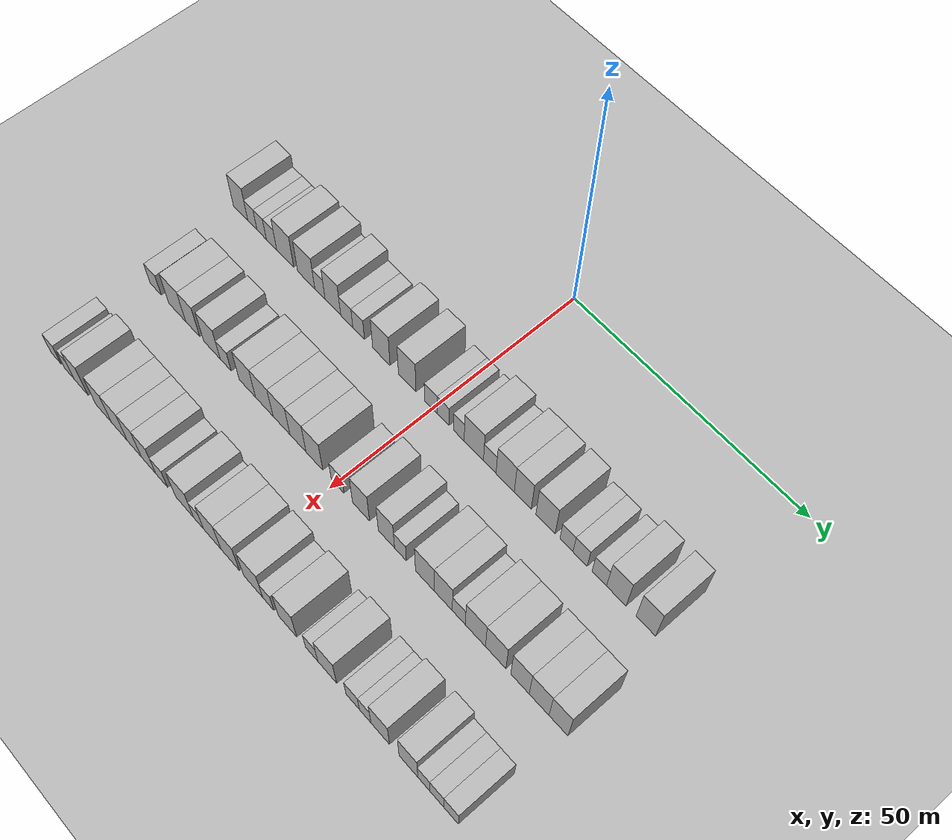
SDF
<sdf version="1.6">
 <world name="default">
  <include><name>ground_plane_1</name><uri>model://HANNAS_ground_plane</uri></include>
  <include>
   <name>ground_plane_2</name>
   <uri>model://HANNAS_ground_plane</uri>
   <pose>100 0 0  0 0 0</pose>
  </include>
  <model name="building_51">
   <static>1</static>
   <pose>25.0000 -47.5132 0 0.000000 0.000000 0.000000</pose>
   <link name="link">
    <pose>0 0 4.50 0 0 0</pose>
    <collision name="collision"><geometry><box><size>10.0000 3.8477 9.0000</size></box></geometry></collision>
    <visual name="visual">
     <cast_shadows>0</cast_shadows>
     <geometry><box><size>10.0000 3.8477 9.0000</size></box></geometry>
     <material>
      <script>
       <uri>model://HANNAS_wall/materials/scripts</uri>
       <uri>model://HANNAS_wall/materials/textures</uri>
       <name>vrc/HANNAS_wall</name>
      </script>
     </material>
    </visual>
   </link>
  </model>
  <model name="building_52">
   <static>1</static>
   <pose>25.0000 -44.3800 0 0.000000 0.000000 0.000000</pose>
   <link name="link">
    <pose>0 0 3.00 0 0 0</pose>
    <collision name="collision"><geometry><box><size>10.0000 2.4187 6.0000</size></box></geometry></collision>
    <visual name="visual">
     <cast_shadows>0</cast_shadows>
     <geometry><box><size>10.0000 2.4187 6.0000</size></box></geometry>
     <material>
      <script>
       <uri>model://HANNAS_wall/materials/scripts</uri>
       <uri>model://HANNAS_wall/materials/textures</uri>
       <name>vrc/HANNAS_wall</name>
      </script>
     </material>
    </visual>
   </link>
  </model>
  <model name="building_53">
   <static>1</static>
   <pose>25.0000 -41.9522 0 0.000000 0.000000 0.000000</pose>
   <link name="link">
    <pose>0 0 3.00 0 0 0</pose>
    <collision name="collision"><geometry><box><size>10.0000 2.4370 6.0000</size></box></geometry></collision>
    <visual name="visual">
     <cast_shadows>0</cast_shadows>
     <geometry><box><size>10.0000 2.4370 6.0000</size></box></geometry>
     <material>
      <script>
       <uri>model://HANNAS_wall/materials/scripts</uri>
       <uri>model://HANNAS_wall/materials/textures</uri>
       <name>vrc/HANNAS_wall</name>
      </script>
     </material>
    </visual>
   </link>
  </model>
  <model name="building_54">
   <static>1</static>
   <pose>25.0000 -39.3737 0 0.000000 0.000000 0.000000</pose>
   <link name="link">
    <pose>0 0 3.00 0 0 0</pose>
    <collision name="collision"><geometry><box><size>10.0000 2.7201 6.0000</size></box></geometry></collision>
    <visual name="visual">
     <cast_shadows>0</cast_shadows>
     <geometry><box><size>10.0000 2.7201 6.0000</size></box></geometry>
     <material>
      <script>
       <uri>model://HANNAS_wall/materials/scripts</uri>
       <uri>model://HANNAS_wall/materials/textures</uri>
       <name>vrc/HANNAS_wall</name>
      </script>
     </material>
    </visual>
   </link>
  </model>
  <model name="building_55">
   <static>1</static>
   <pose>25.0000 -35.8159 0 0.000000 0.000000 0.000000</pose>
   <link name="link">
    <pose>0 0 4.50 0 0 0</pose>
    <collision name="collision"><geometry><box><size>10.0000 4.3954 9.0000</size></box></geometry></collision>
    <visual name="visual">
     <cast_shadows>0</cast_shadows>
     <geometry><box><size>10.0000 4.3954 9.0000</size></box></geometry>
     <material>
      <script>
       <uri>model://HANNAS_wall/materials/scripts</uri>
       <uri>model://HANNAS_wall/materials/textures</uri>
       <name>vrc/HANNAS_wall</name>
      </script>
     </material>
    </visual>
   </link>
  </model>
  <model name="building_56">
   <static>1</static>
   <pose>25.0000 -30.4365 0 0.000000 0.000000 0.000000</pose>
   <link name="link">
    <pose>0 0 4.50 0 0 0</pose>
    <collision name="collision"><geometry><box><size>10.0000 4.3634 9.0000</size></box></geometry></collision>
    <visual name="visual">
     <cast_shadows>0</cast_shadows>
     <geometry><box><size>10.0000 4.3634 9.0000</size></box></geometry>
     <material>
      <script>
       <uri>model://HANNAS_wall/materials/scripts</uri>
       <uri>model://HANNAS_wall/materials/textures</uri>
       <name>vrc/HANNAS_wall</name>
      </script>
     </material>
    </visual>
   </link>
  </model>
  <model name="building_57">
   <static>1</static>
   <pose>25.0000 -26.9606 0 0.000000 0.000000 0.000000</pose>
   <link name="link">
    <pose>0 0 3.00 0 0 0</pose>
    <collision name="collision"><geometry><box><size>10.0000 2.5883 6.0000</size></box></geometry></collision>
    <visual name="visual">
     <cast_shadows>0</cast_shadows>
     <geometry><box><size>10.0000 2.5883 6.0000</size></box></geometry>
     <material>
      <script>
       <uri>model://HANNAS_wall/materials/scripts</uri>
       <uri>model://HANNAS_wall/materials/textures</uri>
       <name>vrc/HANNAS_wall</name>
      </script>
     </material>
    </visual>
   </link>
  </model>
  <model name="building_58">
   <static>1</static>
   <pose>25.0000 -23.7254 0 0.000000 0.000000 0.000000</pose>
   <link name="link">
    <pose>0 0 4.50 0 0 0</pose>
    <collision name="collision"><geometry><box><size>10.0000 3.8822 9.0000</size></box></geometry></collision>
    <visual name="visual">
     <cast_shadows>0</cast_shadows>
     <geometry><box><size>10.0000 3.8822 9.0000</size></box></geometry>
     <material>
      <script>
       <uri>model://HANNAS_wall/materials/scripts</uri>
       <uri>model://HANNAS_wall/materials/textures</uri>
       <name>vrc/HANNAS_wall</name>
      </script>
     </material>
    </visual>
   </link>
  </model>
  <model name="building_59">
   <static>1</static>
   <pose>25.0000 -20.2967 0 0.000000 0.000000 0.000000</pose>
   <link name="link">
    <pose>0 0 3.00 0 0 0</pose>
    <collision name="collision"><geometry><box><size>10.0000 2.9752 6.0000</size></box></geometry></collision>
    <visual name="visual">
     <cast_shadows>0</cast_shadows>
     <geometry><box><size>10.0000 2.9752 6.0000</size></box></geometry>
     <material>
      <script>
       <uri>model://HANNAS_wall/materials/scripts</uri>
       <uri>model://HANNAS_wall/materials/textures</uri>
       <name>vrc/HANNAS_wall</name>
      </script>
     </material>
    </visual>
   </link>
  </model>
  <model name="building_60">
   <static>1</static>
   <pose>25.0000 -17.3888 0 0.000000 0.000000 0.000000</pose>
   <link name="link">
    <pose>0 0 3.00 0 0 0</pose>
    <collision name="collision"><geometry><box><size>10.0000 2.8407 6.0000</size></box></geometry></collision>
    <visual name="visual">
     <cast_shadows>0</cast_shadows>
     <geometry><box><size>10.0000 2.8407 6.0000</size></box></geometry>
     <material>
      <script>
       <uri>model://HANNAS_wall/materials/scripts</uri>
       <uri>model://HANNAS_wall/materials/textures</uri>
       <name>vrc/HANNAS_wall</name>
      </script>
     </material>
    </visual>
   </link>
  </model>
  <model name="building_61">
   <static>1</static>
   <pose>25.0000 -11.8907 0 0.000000 0.000000 0.000000</pose>
   <link name="link">
    <pose>0 0 4.50 0 0 0</pose>
    <collision name="collision"><geometry><box><size>10.0000 4.1554 9.0000</size></box></geometry></collision>
    <visual name="visual">
     <cast_shadows>0</cast_shadows>
     <geometry><box><size>10.0000 4.1554 9.0000</size></box></geometry>
     <material>
      <script>
       <uri>model://HANNAS_wall/materials/scripts</uri>
       <uri>model://HANNAS_wall/materials/textures</uri>
       <name>vrc/HANNAS_wall</name>
      </script>
     </material>
    </visual>
   </link>
  </model>
  <model name="building_62">
   <static>1</static>
   <pose>25.0000 -5.7529 0 0.000000 0.000000 0.000000</pose>
   <link name="link">
    <pose>0 0 4.50 0 0 0</pose>
    <collision name="collision"><geometry><box><size>10.0000 4.1202 9.0000</size></box></geometry></collision>
    <visual name="visual">
     <cast_shadows>0</cast_shadows>
     <geometry><box><size>10.0000 4.1202 9.0000</size></box></geometry>
     <material>
      <script>
       <uri>model://HANNAS_wall/materials/scripts</uri>
       <uri>model://HANNAS_wall/materials/textures</uri>
       <name>vrc/HANNAS_wall</name>
      </script>
     </material>
    </visual>
   </link>
  </model>
  <model name="building_63">
   <static>1</static>
   <pose>25.0000 -0.2308 0 0.000000 0.000000 0.000000</pose>
   <link name="link">
    <pose>0 0 3.00 0 0 0</pose>
    <collision name="collision"><geometry><box><size>10.0000 2.9241 6.0000</size></box></geometry></collision>
    <visual name="visual">
     <cast_shadows>0</cast_shadows>
     <geometry><box><size>10.0000 2.9241 6.0000</size></box></geometry>
     <material>
      <script>
       <uri>model://HANNAS_wall/materials/scripts</uri>
       <uri>model://HANNAS_wall/materials/textures</uri>
       <name>vrc/HANNAS_wall</name>
      </script>
     </material>
    </visual>
   </link>
  </model>
  <model name="building_64">
   <static>1</static>
   <pose>25.0000 2.5908 0 0.000000 0.000000 0.000000</pose>
   <link name="link">
    <pose>0 0 3.00 0 0 0</pose>
    <collision name="collision"><geometry><box><size>10.0000 2.7190 6.0000</size></box></geometry></collision>
    <visual name="visual">
     <cast_shadows>0</cast_shadows>
     <geometry><box><size>10.0000 2.7190 6.0000</size></box></geometry>
     <material>
      <script>
       <uri>model://HANNAS_wall/materials/scripts</uri>
       <uri>model://HANNAS_wall/materials/textures</uri>
       <name>vrc/HANNAS_wall</name>
      </script>
     </material>
    </visual>
   </link>
  </model>
  <model name="building_65">
   <static>1</static>
   <pose>25.0000 6.1698 0 0.000000 0.000000 0.000000</pose>
   <link name="link">
    <pose>0 0 3.00 0 0 0</pose>
    <collision name="collision"><geometry><box><size>10.0000 2.4390 6.0000</size></box></geometry></collision>
    <visual name="visual">
     <cast_shadows>0</cast_shadows>
     <geometry><box><size>10.0000 2.4390 6.0000</size></box></geometry>
     <material>
      <script>
       <uri>model://HANNAS_wall/materials/scripts</uri>
       <uri>model://HANNAS_wall/materials/textures</uri>
       <name>vrc/HANNAS_wall</name>
      </script>
     </material>
    </visual>
   </link>
  </model>
  <model name="building_66">
   <static>1</static>
   <pose>25.0000 9.5536 0 0.000000 0.000000 0.000000</pose>
   <link name="link">
    <pose>0 0 4.50 0 0 0</pose>
    <collision name="collision"><geometry><box><size>10.0000 4.3285 9.0000</size></box></geometry></collision>
    <visual name="visual">
     <cast_shadows>0</cast_shadows>
     <geometry><box><size>10.0000 4.3285 9.0000</size></box></geometry>
     <material>
      <script>
       <uri>model://HANNAS_wall/materials/scripts</uri>
       <uri>model://HANNAS_wall/materials/textures</uri>
       <name>vrc/HANNAS_wall</name>
      </script>
     </material>
    </visual>
   </link>
  </model>
  <model name="building_67">
   <static>1</static>
   <pose>25.0000 13.1188 0 0.000000 0.000000 0.000000</pose>
   <link name="link">
    <pose>0 0 3.00 0 0 0</pose>
    <collision name="collision"><geometry><box><size>10.0000 2.8020 6.0000</size></box></geometry></collision>
    <visual name="visual">
     <cast_shadows>0</cast_shadows>
     <geometry><box><size>10.0000 2.8020 6.0000</size></box></geometry>
     <material>
      <script>
       <uri>model://HANNAS_wall/materials/scripts</uri>
       <uri>model://HANNAS_wall/materials/textures</uri>
       <name>vrc/HANNAS_wall</name>
      </script>
     </material>
    </visual>
   </link>
  </model>
  <model name="building_68">
   <static>1</static>
   <pose>25.0000 16.5203 0 0.000000 0.000000 0.000000</pose>
   <link name="link">
    <pose>0 0 4.50 0 0 0</pose>
    <collision name="collision"><geometry><box><size>10.0000 4.0011 9.0000</size></box></geometry></collision>
    <visual name="visual">
     <cast_shadows>0</cast_shadows>
     <geometry><box><size>10.0000 4.0011 9.0000</size></box></geometry>
     <material>
      <script>
       <uri>model://HANNAS_wall/materials/scripts</uri>
       <uri>model://HANNAS_wall/materials/textures</uri>
       <name>vrc/HANNAS_wall</name>
      </script>
     </material>
    </visual>
   </link>
  </model>
  <model name="building_69">
   <static>1</static>
   <pose>25.0000 20.3563 0 0.000000 0.000000 0.000000</pose>
   <link name="link">
    <pose>0 0 4.50 0 0 0</pose>
    <collision name="collision"><geometry><box><size>10.0000 3.6709 9.0000</size></box></geometry></collision>
    <visual name="visual">
     <cast_shadows>0</cast_shadows>
     <geometry><box><size>10.0000 3.6709 9.0000</size></box></geometry>
     <material>
      <script>
       <uri>model://HANNAS_wall/materials/scripts</uri>
       <uri>model://HANNAS_wall/materials/textures</uri>
       <name>vrc/HANNAS_wall</name>
      </script>
     </material>
    </visual>
   </link>
  </model>
  <model name="building_70">
   <static>1</static>
   <pose>25.0000 25.2545 0 0.000000 0.000000 0.000000</pose>
   <link name="link">
    <pose>0 0 4.50 0 0 0</pose>
    <collision name="collision"><geometry><box><size>10.0000 4.1255 9.0000</size></box></geometry></collision>
    <visual name="visual">
     <cast_shadows>0</cast_shadows>
     <geometry><box><size>10.0000 4.1255 9.0000</size></box></geometry>
     <material>
      <script>
       <uri>model://HANNAS_wall/materials/scripts</uri>
       <uri>model://HANNAS_wall/materials/textures</uri>
       <name>vrc/HANNAS_wall</name>
      </script>
     </material>
    </visual>
   </link>
  </model>
  <model name="building_71">
   <static>1</static>
   <pose>25.0000 29.6918 0 0.000000 0.000000 0.000000</pose>
   <link name="link">
    <pose>0 0 3.00 0 0 0</pose>
    <collision name="collision"><geometry><box><size>10.0000 2.7492 6.0000</size></box></geometry></collision>
    <visual name="visual">
     <cast_shadows>0</cast_shadows>
     <geometry><box><size>10.0000 2.7492 6.0000</size></box></geometry>
     <material>
      <script>
       <uri>model://HANNAS_wall/materials/scripts</uri>
       <uri>model://HANNAS_wall/materials/textures</uri>
       <name>vrc/HANNAS_wall</name>
      </script>
     </material>
    </visual>
   </link>
  </model>
  <model name="building_72">
   <static>1</static>
   <pose>25.0000 32.5483 0 0.000000 0.000000 0.000000</pose>
   <link name="link">
    <pose>0 0 3.00 0 0 0</pose>
    <collision name="collision"><geometry><box><size>10.0000 2.9639 6.0000</size></box></geometry></collision>
    <visual name="visual">
     <cast_shadows>0</cast_shadows>
     <geometry><box><size>10.0000 2.9639 6.0000</size></box></geometry>
     <material>
      <script>
       <uri>model://HANNAS_wall/materials/scripts</uri>
       <uri>model://HANNAS_wall/materials/textures</uri>
       <name>vrc/HANNAS_wall</name>
      </script>
     </material>
    </visual>
   </link>
  </model>
  <model name="building_73">
   <static>1</static>
   <pose>25.0000 36.5197 0 0.000000 0.000000 0.000000</pose>
   <link name="link">
    <pose>0 0 3.00 0 0 0</pose>
    <collision name="collision"><geometry><box><size>10.0000 2.9788 6.0000</size></box></geometry></collision>
    <visual name="visual">
     <cast_shadows>0</cast_shadows>
     <geometry><box><size>10.0000 2.9788 6.0000</size></box></geometry>
     <material>
      <script>
       <uri>model://HANNAS_wall/materials/scripts</uri>
       <uri>model://HANNAS_wall/materials/textures</uri>
       <name>vrc/HANNAS_wall</name>
      </script>
     </material>
    </visual>
   </link>
  </model>
  <model name="building_74">
   <static>1</static>
   <pose>25.0000 40.0029 0 0.000000 0.000000 0.000000</pose>
   <link name="link">
    <pose>0 0 4.50 0 0 0</pose>
    <collision name="collision"><geometry><box><size>10.0000 3.9876 9.0000</size></box></geometry></collision>
    <visual name="visual">
     <cast_shadows>0</cast_shadows>
     <geometry><box><size>10.0000 3.9876 9.0000</size></box></geometry>
     <material>
      <script>
       <uri>model://HANNAS_wall/materials/scripts</uri>
       <uri>model://HANNAS_wall/materials/textures</uri>
       <name>vrc/HANNAS_wall</name>
      </script>
     </material>
    </visual>
   </link>
  </model>
  <model name="building_75">
   <static>1</static>
   <pose>25.0000 45.9459 0 0.000000 0.000000 0.000000</pose>
   <link name="link">
    <pose>0 0 4.50 0 0 0</pose>
    <collision name="collision"><geometry><box><size>10.0000 3.8984 9.0000</size></box></geometry></collision>
    <visual name="visual">
     <cast_shadows>0</cast_shadows>
     <geometry><box><size>10.0000 3.8984 9.0000</size></box></geometry>
     <material>
      <script>
       <uri>model://HANNAS_wall/materials/scripts</uri>
       <uri>model://HANNAS_wall/materials/textures</uri>
       <name>vrc/HANNAS_wall</name>
      </script>
     </material>
    </visual>
   </link>
  </model>
  <model name="building_169">
   <static>1</static>
   <pose>44.0000 -44.8253 0 0.000000 0.000000 0.000000</pose>
   <link name="link">
    <pose>0 0 3.00 0 0 0</pose>
    <collision name="collision"><geometry><box><size>10.0000 2.9949 6.0000</size></box></geometry></collision>
    <visual name="visual">
     <cast_shadows>0</cast_shadows>
     <geometry><box><size>10.0000 2.9949 6.0000</size></box></geometry>
     <material>
      <script>
       <uri>model://HANNAS_wall/materials/scripts</uri>
       <uri>model://HANNAS_wall/materials/textures</uri>
       <name>vrc/HANNAS_wall</name>
      </script>
     </material>
    </visual>
   </link>
  </model>
  <model name="building_170">
   <static>1</static>
   <pose>44.0000 -39.0909 0 0.000000 0.000000 0.000000</pose>
   <link name="link">
    <pose>0 0 4.50 0 0 0</pose>
    <collision name="collision"><geometry><box><size>10.0000 4.4739 9.0000</size></box></geometry></collision>
    <visual name="visual">
     <cast_shadows>0</cast_shadows>
     <geometry><box><size>10.0000 4.4739 9.0000</size></box></geometry>
     <material>
      <script>
       <uri>model://HANNAS_wall/materials/scripts</uri>
       <uri>model://HANNAS_wall/materials/textures</uri>
       <name>vrc/HANNAS_wall</name>
      </script>
     </material>
    </visual>
   </link>
  </model>
  <model name="building_171">
   <static>1</static>
   <pose>44.0000 -35.0197 0 0.000000 0.000000 0.000000</pose>
   <link name="link">
    <pose>0 0 4.50 0 0 0</pose>
    <collision name="collision"><geometry><box><size>10.0000 3.6686 9.0000</size></box></geometry></collision>
    <visual name="visual">
     <cast_shadows>0</cast_shadows>
     <geometry><box><size>10.0000 3.6686 9.0000</size></box></geometry>
     <material>
      <script>
       <uri>model://HANNAS_wall/materials/scripts</uri>
       <uri>model://HANNAS_wall/materials/textures</uri>
       <name>vrc/HANNAS_wall</name>
      </script>
     </material>
    </visual>
   </link>
  </model>
  <model name="building_172">
   <static>1</static>
   <pose>44.0000 -30.0593 0 0.000000 0.000000 0.000000</pose>
   <link name="link">
    <pose>0 0 4.50 0 0 0</pose>
    <collision name="collision"><geometry><box><size>10.0000 4.2521 9.0000</size></box></geometry></collision>
    <visual name="visual">
     <cast_shadows>0</cast_shadows>
     <geometry><box><size>10.0000 4.2521 9.0000</size></box></geometry>
     <material>
      <script>
       <uri>model://HANNAS_wall/materials/scripts</uri>
       <uri>model://HANNAS_wall/materials/textures</uri>
       <name>vrc/HANNAS_wall</name>
      </script>
     </material>
    </visual>
   </link>
  </model>
  <model name="building_173">
   <static>1</static>
   <pose>44.0000 -26.5347 0 0.000000 0.000000 0.000000</pose>
   <link name="link">
    <pose>0 0 3.00 0 0 0</pose>
    <collision name="collision"><geometry><box><size>10.0000 2.7971 6.0000</size></box></geometry></collision>
    <visual name="visual">
     <cast_shadows>0</cast_shadows>
     <geometry><box><size>10.0000 2.7971 6.0000</size></box></geometry>
     <material>
      <script>
       <uri>model://HANNAS_wall/materials/scripts</uri>
       <uri>model://HANNAS_wall/materials/textures</uri>
       <name>vrc/HANNAS_wall</name>
      </script>
     </material>
    </visual>
   </link>
  </model>
  <model name="building_174">
   <static>1</static>
   <pose>44.0000 -21.0949 0 0.000000 0.000000 0.000000</pose>
   <link name="link">
    <pose>0 0 4.50 0 0 0</pose>
    <collision name="collision"><geometry><box><size>10.0000 4.0825 9.0000</size></box></geometry></collision>
    <visual name="visual">
     <cast_shadows>0</cast_shadows>
     <geometry><box><size>10.0000 4.0825 9.0000</size></box></geometry>
     <material>
      <script>
       <uri>model://HANNAS_wall/materials/scripts</uri>
       <uri>model://HANNAS_wall/materials/textures</uri>
       <name>vrc/HANNAS_wall</name>
      </script>
     </material>
    </visual>
   </link>
  </model>
  <model name="building_175">
   <static>1</static>
   <pose>44.0000 -16.8948 0 0.000000 0.000000 0.000000</pose>
   <link name="link">
    <pose>0 0 4.50 0 0 0</pose>
    <collision name="collision"><geometry><box><size>10.0000 4.3177 9.0000</size></box></geometry></collision>
    <visual name="visual">
     <cast_shadows>0</cast_shadows>
     <geometry><box><size>10.0000 4.3177 9.0000</size></box></geometry>
     <material>
      <script>
       <uri>model://HANNAS_wall/materials/scripts</uri>
       <uri>model://HANNAS_wall/materials/textures</uri>
       <name>vrc/HANNAS_wall</name>
      </script>
     </material>
    </visual>
   </link>
  </model>
  <model name="building_176">
   <static>1</static>
   <pose>44.0000 -12.6808 0 0.000000 0.000000 0.000000</pose>
   <link name="link">
    <pose>0 0 4.50 0 0 0</pose>
    <collision name="collision"><geometry><box><size>10.0000 4.1104 9.0000</size></box></geometry></collision>
    <visual name="visual">
     <cast_shadows>0</cast_shadows>
     <geometry><box><size>10.0000 4.1104 9.0000</size></box></geometry>
     <material>
      <script>
       <uri>model://HANNAS_wall/materials/scripts</uri>
       <uri>model://HANNAS_wall/materials/textures</uri>
       <name>vrc/HANNAS_wall</name>
      </script>
     </material>
    </visual>
   </link>
  </model>
  <model name="building_177">
   <static>1</static>
   <pose>44.0000 -8.6938 0 0.000000 0.000000 0.000000</pose>
   <link name="link">
    <pose>0 0 4.50 0 0 0</pose>
    <collision name="collision"><geometry><box><size>10.0000 3.8636 9.0000</size></box></geometry></collision>
    <visual name="visual">
     <cast_shadows>0</cast_shadows>
     <geometry><box><size>10.0000 3.8636 9.0000</size></box></geometry>
     <material>
      <script>
       <uri>model://HANNAS_wall/materials/scripts</uri>
       <uri>model://HANNAS_wall/materials/textures</uri>
       <name>vrc/HANNAS_wall</name>
      </script>
     </material>
    </visual>
   </link>
  </model>
  <model name="building_178">
   <static>1</static>
   <pose>44.0000 -4.7804 0 0.000000 0.000000 0.000000</pose>
   <link name="link">
    <pose>0 0 4.50 0 0 0</pose>
    <collision name="collision"><geometry><box><size>10.0000 3.9633 9.0000</size></box></geometry></collision>
    <visual name="visual">
     <cast_shadows>0</cast_shadows>
     <geometry><box><size>10.0000 3.9633 9.0000</size></box></geometry>
     <material>
      <script>
       <uri>model://HANNAS_wall/materials/scripts</uri>
       <uri>model://HANNAS_wall/materials/textures</uri>
       <name>vrc/HANNAS_wall</name>
      </script>
     </material>
    </visual>
   </link>
  </model>
  <model name="building_179">
   <static>1</static>
   <pose>44.0000 0.6694 0 0.000000 0.000000 0.000000</pose>
   <link name="link">
    <pose>0 0 3.00 0 0 0</pose>
    <collision name="collision"><geometry><box><size>10.0000 2.9363 6.0000</size></box></geometry></collision>
    <visual name="visual">
     <cast_shadows>0</cast_shadows>
     <geometry><box><size>10.0000 2.9363 6.0000</size></box></geometry>
     <material>
      <script>
       <uri>model://HANNAS_wall/materials/scripts</uri>
       <uri>model://HANNAS_wall/materials/textures</uri>
       <name>vrc/HANNAS_wall</name>
      </script>
     </material>
    </visual>
   </link>
  </model>
  <model name="building_180">
   <static>1</static>
   <pose>44.0000 6.0769 0 0.000000 0.000000 0.000000</pose>
   <link name="link">
    <pose>0 0 4.50 0 0 0</pose>
    <collision name="collision"><geometry><box><size>10.0000 3.8786 9.0000</size></box></geometry></collision>
    <visual name="visual">
     <cast_shadows>0</cast_shadows>
     <geometry><box><size>10.0000 3.8786 9.0000</size></box></geometry>
     <material>
      <script>
       <uri>model://HANNAS_wall/materials/scripts</uri>
       <uri>model://HANNAS_wall/materials/textures</uri>
       <name>vrc/HANNAS_wall</name>
      </script>
     </material>
    </visual>
   </link>
  </model>
  <model name="building_181">
   <static>1</static>
   <pose>44.0000 11.8322 0 0.000000 0.000000 0.000000</pose>
   <link name="link">
    <pose>0 0 4.50 0 0 0</pose>
    <collision name="collision"><geometry><box><size>10.0000 3.6320 9.0000</size></box></geometry></collision>
    <visual name="visual">
     <cast_shadows>0</cast_shadows>
     <geometry><box><size>10.0000 3.6320 9.0000</size></box></geometry>
     <material>
      <script>
       <uri>model://HANNAS_wall/materials/scripts</uri>
       <uri>model://HANNAS_wall/materials/textures</uri>
       <name>vrc/HANNAS_wall</name>
      </script>
     </material>
    </visual>
   </link>
  </model>
  <model name="building_182">
   <static>1</static>
   <pose>44.0000 14.9677 0 0.000000 0.000000 0.000000</pose>
   <link name="link">
    <pose>0 0 3.00 0 0 0</pose>
    <collision name="collision"><geometry><box><size>10.0000 2.6391 6.0000</size></box></geometry></collision>
    <visual name="visual">
     <cast_shadows>0</cast_shadows>
     <geometry><box><size>10.0000 2.6391 6.0000</size></box></geometry>
     <material>
      <script>
       <uri>model://HANNAS_wall/materials/scripts</uri>
       <uri>model://HANNAS_wall/materials/textures</uri>
       <name>vrc/HANNAS_wall</name>
      </script>
     </material>
    </visual>
   </link>
  </model>
  <model name="building_183">
   <static>1</static>
   <pose>44.0000 20.3506 0 0.000000 0.000000 0.000000</pose>
   <link name="link">
    <pose>0 0 4.50 0 0 0</pose>
    <collision name="collision"><geometry><box><size>10.0000 4.1267 9.0000</size></box></geometry></collision>
    <visual name="visual">
     <cast_shadows>0</cast_shadows>
     <geometry><box><size>10.0000 4.1267 9.0000</size></box></geometry>
     <material>
      <script>
       <uri>model://HANNAS_wall/materials/scripts</uri>
       <uri>model://HANNAS_wall/materials/textures</uri>
       <name>vrc/HANNAS_wall</name>
      </script>
     </material>
    </visual>
   </link>
  </model>
  <model name="building_184">
   <static>1</static>
   <pose>44.0000 24.3502 0 0.000000 0.000000 0.000000</pose>
   <link name="link">
    <pose>0 0 4.50 0 0 0</pose>
    <collision name="collision"><geometry><box><size>10.0000 3.8724 9.0000</size></box></geometry></collision>
    <visual name="visual">
     <cast_shadows>0</cast_shadows>
     <geometry><box><size>10.0000 3.8724 9.0000</size></box></geometry>
     <material>
      <script>
       <uri>model://HANNAS_wall/materials/scripts</uri>
       <uri>model://HANNAS_wall/materials/textures</uri>
       <name>vrc/HANNAS_wall</name>
      </script>
     </material>
    </visual>
   </link>
  </model>
  <model name="building_185">
   <static>1</static>
   <pose>44.0000 27.6755 0 0.000000 0.000000 0.000000</pose>
   <link name="link">
    <pose>0 0 3.00 0 0 0</pose>
    <collision name="collision"><geometry><box><size>10.0000 2.7783 6.0000</size></box></geometry></collision>
    <visual name="visual">
     <cast_shadows>0</cast_shadows>
     <geometry><box><size>10.0000 2.7783 6.0000</size></box></geometry>
     <material>
      <script>
       <uri>model://HANNAS_wall/materials/scripts</uri>
       <uri>model://HANNAS_wall/materials/textures</uri>
       <name>vrc/HANNAS_wall</name>
      </script>
     </material>
    </visual>
   </link>
  </model>
  <model name="building_186">
   <static>1</static>
   <pose>44.0000 31.1851 0 0.000000 0.000000 0.000000</pose>
   <link name="link">
    <pose>0 0 4.50 0 0 0</pose>
    <collision name="collision"><geometry><box><size>10.0000 4.2407 9.0000</size></box></geometry></collision>
    <visual name="visual">
     <cast_shadows>0</cast_shadows>
     <geometry><box><size>10.0000 4.2407 9.0000</size></box></geometry>
     <material>
      <script>
       <uri>model://HANNAS_wall/materials/scripts</uri>
       <uri>model://HANNAS_wall/materials/textures</uri>
       <name>vrc/HANNAS_wall</name>
      </script>
     </material>
    </visual>
   </link>
  </model>
  <model name="building_187">
   <static>1</static>
   <pose>44.0000 35.4277 0 0.000000 0.000000 0.000000</pose>
   <link name="link">
    <pose>0 0 4.50 0 0 0</pose>
    <collision name="collision"><geometry><box><size>10.0000 4.2445 9.0000</size></box></geometry></collision>
    <visual name="visual">
     <cast_shadows>0</cast_shadows>
     <geometry><box><size>10.0000 4.2445 9.0000</size></box></geometry>
     <material>
      <script>
       <uri>model://HANNAS_wall/materials/scripts</uri>
       <uri>model://HANNAS_wall/materials/textures</uri>
       <name>vrc/HANNAS_wall</name>
      </script>
     </material>
    </visual>
   </link>
  </model>
  <model name="building_188">
   <static>1</static>
   <pose>44.0000 40.4288 0 0.000000 0.000000 0.000000</pose>
   <link name="link">
    <pose>0 0 4.50 0 0 0</pose>
    <collision name="collision"><geometry><box><size>10.0000 3.7578 9.0000</size></box></geometry></collision>
    <visual name="visual">
     <cast_shadows>0</cast_shadows>
     <geometry><box><size>10.0000 3.7578 9.0000</size></box></geometry>
     <material>
      <script>
       <uri>model://HANNAS_wall/materials/scripts</uri>
       <uri>model://HANNAS_wall/materials/textures</uri>
       <name>vrc/HANNAS_wall</name>
      </script>
     </material>
    </visual>
   </link>
  </model>
  <model name="building_189">
   <static>1</static>
   <pose>44.0000 44.3039 0 0.000000 0.000000 0.000000</pose>
   <link name="link">
    <pose>0 0 4.50 0 0 0</pose>
    <collision name="collision"><geometry><box><size>10.0000 3.9924 9.0000</size></box></geometry></collision>
    <visual name="visual">
     <cast_shadows>0</cast_shadows>
     <geometry><box><size>10.0000 3.9924 9.0000</size></box></geometry>
     <material>
      <script>
       <uri>model://HANNAS_wall/materials/scripts</uri>
       <uri>model://HANNAS_wall/materials/textures</uri>
       <name>vrc/HANNAS_wall</name>
      </script>
     </material>
    </visual>
   </link>
  </model>
  <model name="building_190">
   <static>1</static>
   <pose>44.0000 48.1845 0 0.000000 0.000000 0.000000</pose>
   <link name="link">
    <pose>0 0 4.50 0 0 0</pose>
    <collision name="collision"><geometry><box><size>10.0000 3.7688 9.0000</size></box></geometry></collision>
    <visual name="visual">
     <cast_shadows>0</cast_shadows>
     <geometry><box><size>10.0000 3.7688 9.0000</size></box></geometry>
     <material>
      <script>
       <uri>model://HANNAS_wall/materials/scripts</uri>
       <uri>model://HANNAS_wall/materials/textures</uri>
       <name>vrc/HANNAS_wall</name>
      </script>
     </material>
    </visual>
   </link>
  </model>
  <model name="building_289">
   <static>1</static>
   <pose>63.0000 -44.7509 0 0.000000 0.000000 0.000000</pose>
   <link name="link">
    <pose>0 0 3.00 0 0 0</pose>
    <collision name="collision"><geometry><box><size>10.0000 2.8102 6.0000</size></box></geometry></collision>
    <visual name="visual">
     <cast_shadows>0</cast_shadows>
     <geometry><box><size>10.0000 2.8102 6.0000</size></box></geometry>
     <material>
      <script>
       <uri>model://HANNAS_wall/materials/scripts</uri>
       <uri>model://HANNAS_wall/materials/textures</uri>
       <name>vrc/HANNAS_wall</name>
      </script>
     </material>
    </visual>
   </link>
  </model>
  <model name="building_290">
   <static>1</static>
   <pose>63.0000 -41.0839 0 0.000000 0.000000 0.000000</pose>
   <link name="link">
    <pose>0 0 3.00 0 0 0</pose>
    <collision name="collision"><geometry><box><size>10.0000 2.5238 6.0000</size></box></geometry></collision>
    <visual name="visual">
     <cast_shadows>0</cast_shadows>
     <geometry><box><size>10.0000 2.5238 6.0000</size></box></geometry>
     <material>
      <script>
       <uri>model://HANNAS_wall/materials/scripts</uri>
       <uri>model://HANNAS_wall/materials/textures</uri>
       <name>vrc/HANNAS_wall</name>
      </script>
     </material>
    </visual>
   </link>
  </model>
  <model name="building_291">
   <static>1</static>
   <pose>63.0000 -37.9626 0 0.000000 0.000000 0.000000</pose>
   <link name="link">
    <pose>0 0 4.50 0 0 0</pose>
    <collision name="collision"><geometry><box><size>10.0000 3.7188 9.0000</size></box></geometry></collision>
    <visual name="visual">
     <cast_shadows>0</cast_shadows>
     <geometry><box><size>10.0000 3.7188 9.0000</size></box></geometry>
     <material>
      <script>
       <uri>model://HANNAS_wall/materials/scripts</uri>
       <uri>model://HANNAS_wall/materials/textures</uri>
       <name>vrc/HANNAS_wall</name>
      </script>
     </material>
    </visual>
   </link>
  </model>
  <model name="building_292">
   <static>1</static>
   <pose>63.0000 -32.0401 0 0.000000 0.000000 0.000000</pose>
   <link name="link">
    <pose>0 0 4.50 0 0 0</pose>
    <collision name="collision"><geometry><box><size>10.0000 4.1262 9.0000</size></box></geometry></collision>
    <visual name="visual">
     <cast_shadows>0</cast_shadows>
     <geometry><box><size>10.0000 4.1262 9.0000</size></box></geometry>
     <material>
      <script>
       <uri>model://HANNAS_wall/materials/scripts</uri>
       <uri>model://HANNAS_wall/materials/textures</uri>
       <name>vrc/HANNAS_wall</name>
      </script>
     </material>
    </visual>
   </link>
  </model>
  <model name="building_293">
   <static>1</static>
   <pose>63.0000 -27.9078 0 0.000000 0.000000 0.000000</pose>
   <link name="link">
    <pose>0 0 4.50 0 0 0</pose>
    <collision name="collision"><geometry><box><size>10.0000 4.1383 9.0000</size></box></geometry></collision>
    <visual name="visual">
     <cast_shadows>0</cast_shadows>
     <geometry><box><size>10.0000 4.1383 9.0000</size></box></geometry>
     <material>
      <script>
       <uri>model://HANNAS_wall/materials/scripts</uri>
       <uri>model://HANNAS_wall/materials/textures</uri>
       <name>vrc/HANNAS_wall</name>
      </script>
     </material>
    </visual>
   </link>
  </model>
  <model name="building_294">
   <static>1</static>
   <pose>63.0000 -24.0247 0 0.000000 0.000000 0.000000</pose>
   <link name="link">
    <pose>0 0 4.50 0 0 0</pose>
    <collision name="collision"><geometry><box><size>10.0000 3.6279 9.0000</size></box></geometry></collision>
    <visual name="visual">
     <cast_shadows>0</cast_shadows>
     <geometry><box><size>10.0000 3.6279 9.0000</size></box></geometry>
     <material>
      <script>
       <uri>model://HANNAS_wall/materials/scripts</uri>
       <uri>model://HANNAS_wall/materials/textures</uri>
       <name>vrc/HANNAS_wall</name>
      </script>
     </material>
    </visual>
   </link>
  </model>
  <model name="building_295">
   <static>1</static>
   <pose>63.0000 -20.4001 0 0.000000 0.000000 0.000000</pose>
   <link name="link">
    <pose>0 0 4.50 0 0 0</pose>
    <collision name="collision"><geometry><box><size>10.0000 3.6213 9.0000</size></box></geometry></collision>
    <visual name="visual">
     <cast_shadows>0</cast_shadows>
     <geometry><box><size>10.0000 3.6213 9.0000</size></box></geometry>
     <material>
      <script>
       <uri>model://HANNAS_wall/materials/scripts</uri>
       <uri>model://HANNAS_wall/materials/textures</uri>
       <name>vrc/HANNAS_wall</name>
      </script>
     </material>
    </visual>
   </link>
  </model>
  <model name="building_296">
   <static>1</static>
   <pose>63.0000 -17.1371 0 0.000000 0.000000 0.000000</pose>
   <link name="link">
    <pose>0 0 3.00 0 0 0</pose>
    <collision name="collision"><geometry><box><size>10.0000 2.9048 6.0000</size></box></geometry></collision>
    <visual name="visual">
     <cast_shadows>0</cast_shadows>
     <geometry><box><size>10.0000 2.9048 6.0000</size></box></geometry>
     <material>
      <script>
       <uri>model://HANNAS_wall/materials/scripts</uri>
       <uri>model://HANNAS_wall/materials/textures</uri>
       <name>vrc/HANNAS_wall</name>
      </script>
     </material>
    </visual>
   </link>
  </model>
  <model name="building_297">
   <static>1</static>
   <pose>63.0000 -11.4772 0 0.000000 0.000000 0.000000</pose>
   <link name="link">
    <pose>0 0 4.50 0 0 0</pose>
    <collision name="collision"><geometry><box><size>10.0000 4.4148 9.0000</size></box></geometry></collision>
    <visual name="visual">
     <cast_shadows>0</cast_shadows>
     <geometry><box><size>10.0000 4.4148 9.0000</size></box></geometry>
     <material>
      <script>
       <uri>model://HANNAS_wall/materials/scripts</uri>
       <uri>model://HANNAS_wall/materials/textures</uri>
       <name>vrc/HANNAS_wall</name>
      </script>
     </material>
    </visual>
   </link>
  </model>
  <model name="building_298">
   <static>1</static>
   <pose>63.0000 -8.0472 0 0.000000 0.000000 0.000000</pose>
   <link name="link">
    <pose>0 0 3.00 0 0 0</pose>
    <collision name="collision"><geometry><box><size>10.0000 2.4452 6.0000</size></box></geometry></collision>
    <visual name="visual">
     <cast_shadows>0</cast_shadows>
     <geometry><box><size>10.0000 2.4452 6.0000</size></box></geometry>
     <material>
      <script>
       <uri>model://HANNAS_wall/materials/scripts</uri>
       <uri>model://HANNAS_wall/materials/textures</uri>
       <name>vrc/HANNAS_wall</name>
      </script>
     </material>
    </visual>
   </link>
  </model>
  <model name="building_299">
   <static>1</static>
   <pose>63.0000 -4.7587 0 0.000000 0.000000 0.000000</pose>
   <link name="link">
    <pose>0 0 4.50 0 0 0</pose>
    <collision name="collision"><geometry><box><size>10.0000 4.1318 9.0000</size></box></geometry></collision>
    <visual name="visual">
     <cast_shadows>0</cast_shadows>
     <geometry><box><size>10.0000 4.1318 9.0000</size></box></geometry>
     <material>
      <script>
       <uri>model://HANNAS_wall/materials/scripts</uri>
       <uri>model://HANNAS_wall/materials/textures</uri>
       <name>vrc/HANNAS_wall</name>
      </script>
     </material>
    </visual>
   </link>
  </model>
  <model name="building_300">
   <static>1</static>
   <pose>63.0000 -0.4992 0 0.000000 0.000000 0.000000</pose>
   <link name="link">
    <pose>0 0 4.50 0 0 0</pose>
    <collision name="collision"><geometry><box><size>10.0000 4.3871 9.0000</size></box></geometry></collision>
    <visual name="visual">
     <cast_shadows>0</cast_shadows>
     <geometry><box><size>10.0000 4.3871 9.0000</size></box></geometry>
     <material>
      <script>
       <uri>model://HANNAS_wall/materials/scripts</uri>
       <uri>model://HANNAS_wall/materials/textures</uri>
       <name>vrc/HANNAS_wall</name>
      </script>
     </material>
    </visual>
   </link>
  </model>
  <model name="building_301">
   <static>1</static>
   <pose>63.0000 4.9107 0 0.000000 0.000000 0.000000</pose>
   <link name="link">
    <pose>0 0 4.50 0 0 0</pose>
    <collision name="collision"><geometry><box><size>10.0000 4.4328 9.0000</size></box></geometry></collision>
    <visual name="visual">
     <cast_shadows>0</cast_shadows>
     <geometry><box><size>10.0000 4.4328 9.0000</size></box></geometry>
     <material>
      <script>
       <uri>model://HANNAS_wall/materials/scripts</uri>
       <uri>model://HANNAS_wall/materials/textures</uri>
       <name>vrc/HANNAS_wall</name>
      </script>
     </material>
    </visual>
   </link>
  </model>
  <model name="building_302">
   <static>1</static>
   <pose>63.0000 8.3949 0 0.000000 0.000000 0.000000</pose>
   <link name="link">
    <pose>0 0 3.00 0 0 0</pose>
    <collision name="collision"><geometry><box><size>10.0000 2.5356 6.0000</size></box></geometry></collision>
    <visual name="visual">
     <cast_shadows>0</cast_shadows>
     <geometry><box><size>10.0000 2.5356 6.0000</size></box></geometry>
     <material>
      <script>
       <uri>model://HANNAS_wall/materials/scripts</uri>
       <uri>model://HANNAS_wall/materials/textures</uri>
       <name>vrc/HANNAS_wall</name>
      </script>
     </material>
    </visual>
   </link>
  </model>
  <model name="building_303">
   <static>1</static>
   <pose>63.0000 12.7564 0 0.000000 0.000000 0.000000</pose>
   <link name="link">
    <pose>0 0 4.50 0 0 0</pose>
    <collision name="collision"><geometry><box><size>10.0000 4.1874 9.0000</size></box></geometry></collision>
    <visual name="visual">
     <cast_shadows>0</cast_shadows>
     <geometry><box><size>10.0000 4.1874 9.0000</size></box></geometry>
     <material>
      <script>
       <uri>model://HANNAS_wall/materials/scripts</uri>
       <uri>model://HANNAS_wall/materials/textures</uri>
       <name>vrc/HANNAS_wall</name>
      </script>
     </material>
    </visual>
   </link>
  </model>
  <model name="building_304">
   <static>1</static>
   <pose>63.0000 18.2166 0 0.000000 0.000000 0.000000</pose>
   <link name="link">
    <pose>0 0 3.00 0 0 0</pose>
    <collision name="collision"><geometry><box><size>10.0000 2.7331 6.0000</size></box></geometry></collision>
    <visual name="visual">
     <cast_shadows>0</cast_shadows>
     <geometry><box><size>10.0000 2.7331 6.0000</size></box></geometry>
     <material>
      <script>
       <uri>model://HANNAS_wall/materials/scripts</uri>
       <uri>model://HANNAS_wall/materials/textures</uri>
       <name>vrc/HANNAS_wall</name>
      </script>
     </material>
    </visual>
   </link>
  </model>
  <model name="building_305">
   <static>1</static>
   <pose>63.0000 21.6503 0 0.000000 0.000000 0.000000</pose>
   <link name="link">
    <pose>0 0 4.50 0 0 0</pose>
    <collision name="collision"><geometry><box><size>10.0000 4.1341 9.0000</size></box></geometry></collision>
    <visual name="visual">
     <cast_shadows>0</cast_shadows>
     <geometry><box><size>10.0000 4.1341 9.0000</size></box></geometry>
     <material>
      <script>
       <uri>model://HANNAS_wall/materials/scripts</uri>
       <uri>model://HANNAS_wall/materials/textures</uri>
       <name>vrc/HANNAS_wall</name>
      </script>
     </material>
    </visual>
   </link>
  </model>
  <model name="building_306">
   <static>1</static>
   <pose>63.0000 27.1676 0 0.000000 0.000000 0.000000</pose>
   <link name="link">
    <pose>0 0 3.00 0 0 0</pose>
    <collision name="collision"><geometry><box><size>10.0000 2.9005 6.0000</size></box></geometry></collision>
    <visual name="visual">
     <cast_shadows>0</cast_shadows>
     <geometry><box><size>10.0000 2.9005 6.0000</size></box></geometry>
     <material>
      <script>
       <uri>model://HANNAS_wall/materials/scripts</uri>
       <uri>model://HANNAS_wall/materials/textures</uri>
       <name>vrc/HANNAS_wall</name>
      </script>
     </material>
    </visual>
   </link>
  </model>
  <model name="building_307">
   <static>1</static>
   <pose>63.0000 29.8609 0 0.000000 0.000000 0.000000</pose>
   <link name="link">
    <pose>0 0 3.00 0 0 0</pose>
    <collision name="collision"><geometry><box><size>10.0000 2.4862 6.0000</size></box></geometry></collision>
    <visual name="visual">
     <cast_shadows>0</cast_shadows>
     <geometry><box><size>10.0000 2.4862 6.0000</size></box></geometry>
     <material>
      <script>
       <uri>model://HANNAS_wall/materials/scripts</uri>
       <uri>model://HANNAS_wall/materials/textures</uri>
       <name>vrc/HANNAS_wall</name>
      </script>
     </material>
    </visual>
   </link>
  </model>
  <model name="building_308">
   <static>1</static>
   <pose>63.0000 33.0532 0 0.000000 0.000000 0.000000</pose>
   <link name="link">
    <pose>0 0 4.50 0 0 0</pose>
    <collision name="collision"><geometry><box><size>10.0000 3.8983 9.0000</size></box></geometry></collision>
    <visual name="visual">
     <cast_shadows>0</cast_shadows>
     <geometry><box><size>10.0000 3.8983 9.0000</size></box></geometry>
     <material>
      <script>
       <uri>model://HANNAS_wall/materials/scripts</uri>
       <uri>model://HANNAS_wall/materials/textures</uri>
       <name>vrc/HANNAS_wall</name>
      </script>
     </material>
    </visual>
   </link>
  </model>
  <model name="building_309">
   <static>1</static>
   <pose>63.0000 38.9350 0 0.000000 0.000000 0.000000</pose>
   <link name="link">
    <pose>0 0 4.50 0 0 0</pose>
    <collision name="collision"><geometry><box><size>10.0000 3.8654 9.0000</size></box></geometry></collision>
    <visual name="visual">
     <cast_shadows>0</cast_shadows>
     <geometry><box><size>10.0000 3.8654 9.0000</size></box></geometry>
     <material>
      <script>
       <uri>model://HANNAS_wall/materials/scripts</uri>
       <uri>model://HANNAS_wall/materials/textures</uri>
       <name>vrc/HANNAS_wall</name>
      </script>
     </material>
    </visual>
   </link>
  </model>
  <model name="building_310">
   <static>1</static>
   <pose>63.0000 42.1198 0 0.000000 0.000000 0.000000</pose>
   <link name="link">
    <pose>0 0 3.00 0 0 0</pose>
    <collision name="collision"><geometry><box><size>10.0000 2.5042 6.0000</size></box></geometry></collision>
    <visual name="visual">
     <cast_shadows>0</cast_shadows>
     <geometry><box><size>10.0000 2.5042 6.0000</size></box></geometry>
     <material>
      <script>
       <uri>model://HANNAS_wall/materials/scripts</uri>
       <uri>model://HANNAS_wall/materials/textures</uri>
       <name>vrc/HANNAS_wall</name>
      </script>
     </material>
    </visual>
   </link>
  </model>
  <model name="building_311">
   <static>1</static>
   <pose>63.0000 44.7479 0 0.000000 0.000000 0.000000</pose>
   <link name="link">
    <pose>0 0 3.00 0 0 0</pose>
    <collision name="collision"><geometry><box><size>10.0000 2.7519 6.0000</size></box></geometry></collision>
    <visual name="visual">
     <cast_shadows>0</cast_shadows>
     <geometry><box><size>10.0000 2.7519 6.0000</size></box></geometry>
     <material>
      <script>
       <uri>model://HANNAS_wall/materials/scripts</uri>
       <uri>model://HANNAS_wall/materials/textures</uri>
       <name>vrc/HANNAS_wall</name>
      </script>
     </material>
    </visual>
   </link>
  </model>
  <model name="building_312">
   <static>1</static>
   <pose>63.0000 47.6044 0 0.000000 0.000000 0.000000</pose>
   <link name="link">
    <pose>0 0 3.00 0 0 0</pose>
    <collision name="collision"><geometry><box><size>10.0000 2.9611 6.0000</size></box></geometry></collision>
    <visual name="visual">
     <cast_shadows>0</cast_shadows>
     <geometry><box><size>10.0000 2.9611 6.0000</size></box></geometry>
     <material>
      <script>
       <uri>model://HANNAS_wall/materials/scripts</uri>
       <uri>model://HANNAS_wall/materials/textures</uri>
       <name>vrc/HANNAS_wall</name>
      </script>
     </material>
    </visual>
   </link>
  </model>
 </world>
</sdf>
